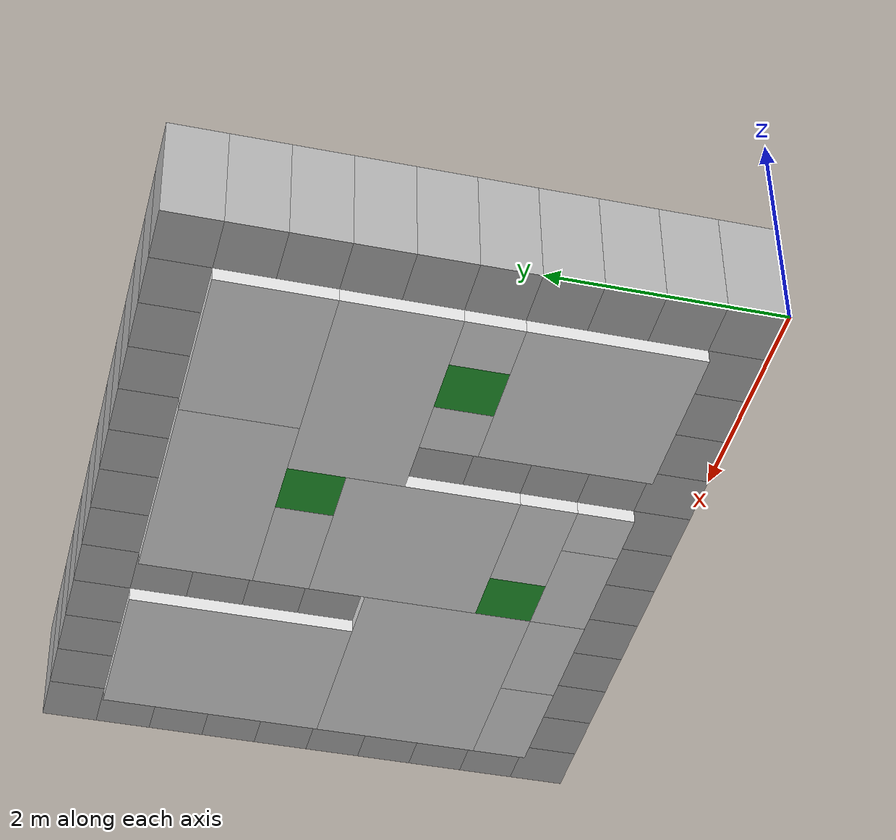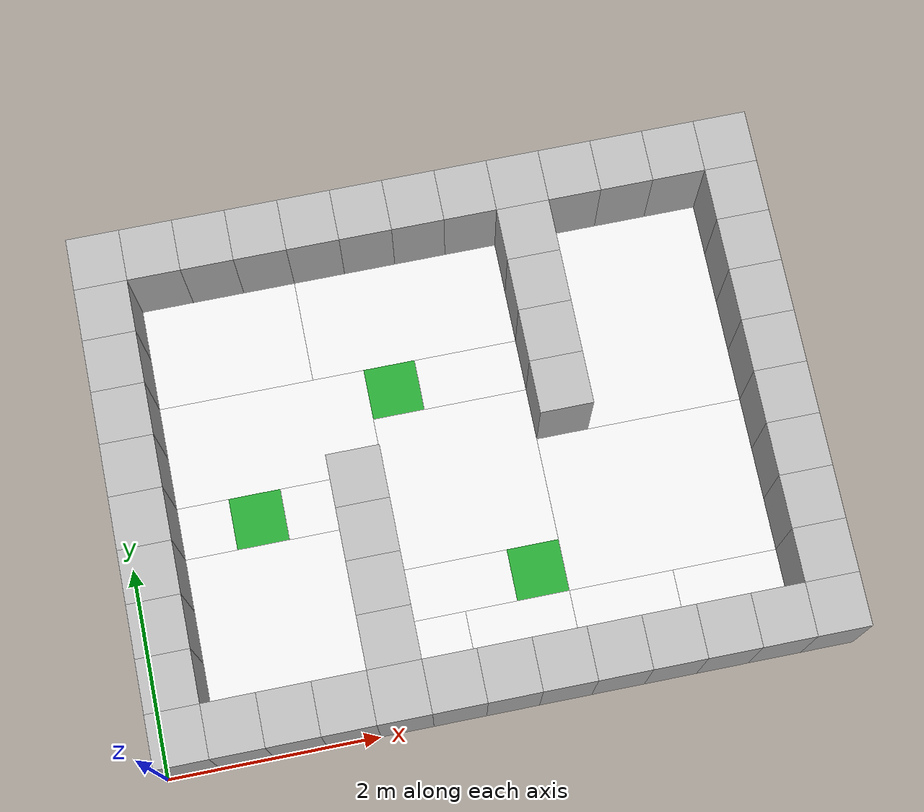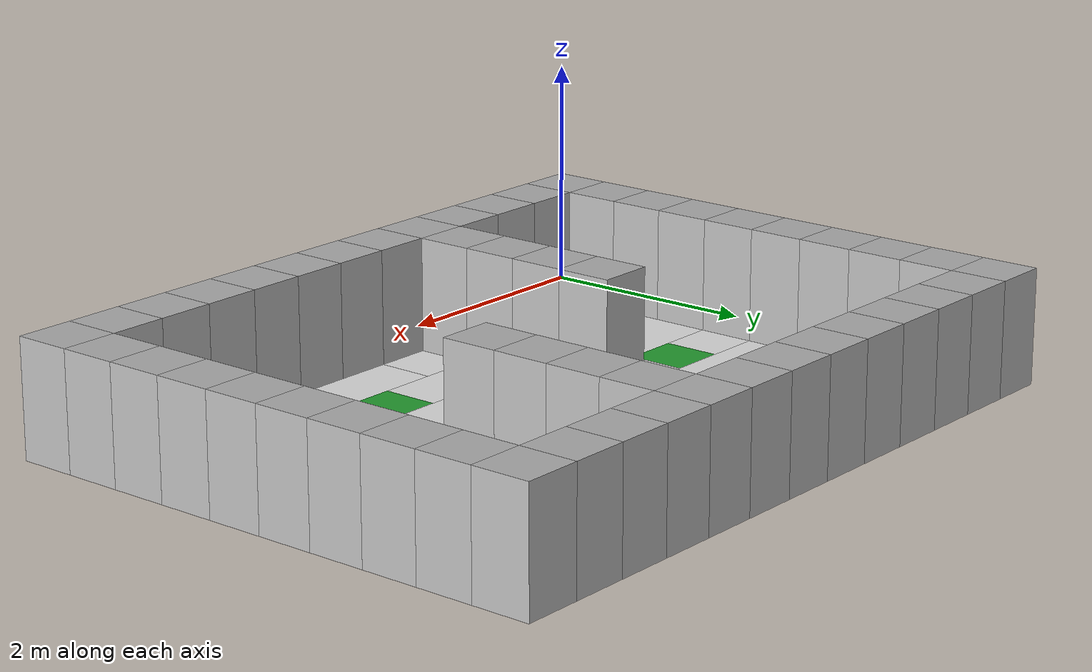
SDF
<sdf version="1.5">
  <model name="map">
    <static>1</static>
    <link name="map">
      <collision name="floor">
        <pose>3.25 2.5 -0.0625 0 0 0</pose>
        <geometry>
          <box>
            <size>6.5 5.0 0.125</size>
          </box>
        </geometry>
      </collision>
      <visual name="floor_0">
        <pose>1.25 1.25 -0.0625 0 0 0</pose>
        <geometry>
          <box>
            <size>1.5 1.5 0.125</size>
          </box>
        </geometry>
        <material>
          <script>
            <uri>file://media/materials/scripts/gazebo.material</uri>
            <name>Gazebo/White</name>
          </script>
        </material>
      </visual>
      <visual name="floor_1">
        <pose>1.25 4.0 -0.0625 0 0 0</pose>
        <geometry>
          <box>
            <size>1.5 1.0 0.125</size>
          </box>
        </geometry>
        <material>
          <script>
            <uri>file://media/materials/scripts/gazebo.material</uri>
            <name>Gazebo/White</name>
          </script>
        </material>
      </visual>
      <visual name="floor_2">
        <pose>3.0 4.0 -0.0625 0 0 0</pose>
        <geometry>
          <box>
            <size>2.0 1.0 0.125</size>
          </box>
        </geometry>
        <material>
          <script>
            <uri>file://media/materials/scripts/gazebo.material</uri>
            <name>Gazebo/White</name>
          </script>
        </material>
      </visual>
      <visual name="floor_3">
        <pose>5.0 1.75 -0.0625 0 0 0</pose>
        <geometry>
          <box>
            <size>2.0 1.5 0.125</size>
          </box>
        </geometry>
        <material>
          <script>
            <uri>file://media/materials/scripts/gazebo.material</uri>
            <name>Gazebo/White</name>
          </script>
        </material>
      </visual>
      <visual name="floor_4">
        <pose>5.25 3.5 -0.0625 0 0 0</pose>
        <geometry>
          <box>
            <size>1.5 2.0 0.125</size>
          </box>
        </geometry>
        <material>
          <script>
            <uri>file://media/materials/scripts/gazebo.material</uri>
            <name>Gazebo/White</name>
          </script>
        </material>
      </visual>
      <visual name="floor_5">
        <pose>2.75 0.75 -0.0625 0 0 0</pose>
        <geometry>
          <box>
            <size>0.5 0.5 0.125</size>
          </box>
        </geometry>
        <material>
          <script>
            <uri>file://media/materials/scripts/gazebo.material</uri>
            <name>Gazebo/White</name>
          </script>
        </material>
      </visual>
      <visual name="floor_6">
        <pose>3.5 0.75 -0.0625 0 0 0</pose>
        <geometry>
          <box>
            <size>1.0 0.5 0.125</size>
          </box>
        </geometry>
        <material>
          <script>
            <uri>file://media/materials/scripts/gazebo.material</uri>
            <name>Gazebo/White</name>
          </script>
        </material>
      </visual>
      <visual name="floor_7">
        <pose>4.5 0.75 -0.0625 0 0 0</pose>
        <geometry>
          <box>
            <size>1.0 0.5 0.125</size>
          </box>
        </geometry>
        <material>
          <script>
            <uri>file://media/materials/scripts/gazebo.material</uri>
            <name>Gazebo/White</name>
          </script>
        </material>
      </visual>
      <visual name="floor_8">
        <pose>5.5 0.75 -0.0625 0 0 0</pose>
        <geometry>
          <box>
            <size>1.0 0.5 0.125</size>
          </box>
        </geometry>
        <material>
          <script>
            <uri>file://media/materials/scripts/gazebo.material</uri>
            <name>Gazebo/White</name>
          </script>
        </material>
      </visual>
      <visual name="floor_9">
        <pose>1.5 3.0 -0.0625 0 0 0</pose>
        <geometry>
          <box>
            <size>2.0 1.0 0.125</size>
          </box>
        </geometry>
        <material>
          <script>
            <uri>file://media/materials/scripts/gazebo.material</uri>
            <name>Gazebo/White</name>
          </script>
        </material>
      </visual>
      <visual name="floor_10">
        <pose>1.75 2.25 -0.0625 0 0 0</pose>
        <geometry>
          <box>
            <size>0.5 0.5 0.125</size>
          </box>
        </geometry>
        <material>
          <script>
            <uri>file://media/materials/scripts/gazebo.material</uri>
            <name>Gazebo/White</name>
          </script>
        </material>
      </visual>
      <visual name="floor_11">
        <pose>3.0 1.25 -0.0625 0 0 0</pose>
        <geometry>
          <box>
            <size>1.0 0.5 0.125</size>
          </box>
        </geometry>
        <material>
          <script>
            <uri>file://media/materials/scripts/gazebo.material</uri>
            <name>Gazebo/White</name>
          </script>
        </material>
      </visual>
      <visual name="floor_12">
        <pose>3.25 2.25 -0.0625 0 0 0</pose>
        <geometry>
          <box>
            <size>1.5 1.5 0.125</size>
          </box>
        </geometry>
        <material>
          <script>
            <uri>file://media/materials/scripts/gazebo.material</uri>
            <name>Gazebo/White</name>
          </script>
        </material>
      </visual>
      <visual name="floor_13">
        <pose>0.75 2.25 -0.0625 0 0 0</pose>
        <geometry>
          <box>
            <size>0.5 0.5 0.125</size>
          </box>
        </geometry>
        <material>
          <script>
            <uri>file://media/materials/scripts/gazebo.material</uri>
            <name>Gazebo/White</name>
          </script>
        </material>
      </visual>
      <visual name="floor_14">
        <pose>3.5 3.25 -0.0625 0 0 0</pose>
        <geometry>
          <box>
            <size>1.0 0.5 0.125</size>
          </box>
        </geometry>
        <material>
          <script>
            <uri>file://media/materials/scripts/gazebo.material</uri>
            <name>Gazebo/White</name>
          </script>
        </material>
      </visual>
      <visual name="floor_target_0">
        <pose>3.75 1.25 -0.0625 0 0 0</pose>
        <geometry>
          <box>
            <size>0.5 0.5 0.125</size>
          </box>
        </geometry>
        <material>
          <script>
            <uri>file://media/materials/scripts/gazebo.material</uri>
            <name>Gazebo/Green</name>
          </script>
        </material>
      </visual>
      <visual name="floor_target_1">
        <pose>1.25 2.25 -0.0625 0 0 0</pose>
        <geometry>
          <box>
            <size>0.5 0.5 0.125</size>
          </box>
        </geometry>
        <material>
          <script>
            <uri>file://media/materials/scripts/gazebo.material</uri>
            <name>Gazebo/Green</name>
          </script>
        </material>
      </visual>
      <visual name="floor_target_2">
        <pose>2.75 3.25 -0.0625 0 0 0</pose>
        <geometry>
          <box>
            <size>0.5 0.5 0.125</size>
          </box>
        </geometry>
        <material>
          <script>
            <uri>file://media/materials/scripts/gazebo.material</uri>
            <name>Gazebo/Green</name>
          </script>
        </material>
      </visual>
      <collision name="box_0_0">
        <pose>0.25 0.25 0.5 0 0 0</pose>
        <geometry>
          <box>
            <size>0.5 0.5 1.0</size>
          </box>
        </geometry>
      </collision>
      <visual name="box_0_0">
        <pose>0.25 0.25 0.5 0 0 0</pose>
        <geometry>
          <box>
            <size>0.5 0.5 1.0</size>
          </box>
        </geometry>
      </visual>
      <collision name="box_0_1">
        <pose>0.25 0.75 0.5 0 0 0</pose>
        <geometry>
          <box>
            <size>0.5 0.5 1.0</size>
          </box>
        </geometry>
      </collision>
      <visual name="box_0_1">
        <pose>0.25 0.75 0.5 0 0 0</pose>
        <geometry>
          <box>
            <size>0.5 0.5 1.0</size>
          </box>
        </geometry>
      </visual>
      <collision name="box_0_2">
        <pose>0.25 1.25 0.5 0 0 0</pose>
        <geometry>
          <box>
            <size>0.5 0.5 1.0</size>
          </box>
        </geometry>
      </collision>
      <visual name="box_0_2">
        <pose>0.25 1.25 0.5 0 0 0</pose>
        <geometry>
          <box>
            <size>0.5 0.5 1.0</size>
          </box>
        </geometry>
      </visual>
      <collision name="box_0_3">
        <pose>0.25 1.75 0.5 0 0 0</pose>
        <geometry>
          <box>
            <size>0.5 0.5 1.0</size>
          </box>
        </geometry>
      </collision>
      <visual name="box_0_3">
        <pose>0.25 1.75 0.5 0 0 0</pose>
        <geometry>
          <box>
            <size>0.5 0.5 1.0</size>
          </box>
        </geometry>
      </visual>
      <collision name="box_0_4">
        <pose>0.25 2.25 0.5 0 0 0</pose>
        <geometry>
          <box>
            <size>0.5 0.5 1.0</size>
          </box>
        </geometry>
      </collision>
      <visual name="box_0_4">
        <pose>0.25 2.25 0.5 0 0 0</pose>
        <geometry>
          <box>
            <size>0.5 0.5 1.0</size>
          </box>
        </geometry>
      </visual>
      <collision name="box_0_5">
        <pose>0.25 2.75 0.5 0 0 0</pose>
        <geometry>
          <box>
            <size>0.5 0.5 1.0</size>
          </box>
        </geometry>
      </collision>
      <visual name="box_0_5">
        <pose>0.25 2.75 0.5 0 0 0</pose>
        <geometry>
          <box>
            <size>0.5 0.5 1.0</size>
          </box>
        </geometry>
      </visual>
      <collision name="box_0_6">
        <pose>0.25 3.25 0.5 0 0 0</pose>
        <geometry>
          <box>
            <size>0.5 0.5 1.0</size>
          </box>
        </geometry>
      </collision>
      <visual name="box_0_6">
        <pose>0.25 3.25 0.5 0 0 0</pose>
        <geometry>
          <box>
            <size>0.5 0.5 1.0</size>
          </box>
        </geometry>
      </visual>
      <collision name="box_0_7">
        <pose>0.25 3.75 0.5 0 0 0</pose>
        <geometry>
          <box>
            <size>0.5 0.5 1.0</size>
          </box>
        </geometry>
      </collision>
      <visual name="box_0_7">
        <pose>0.25 3.75 0.5 0 0 0</pose>
        <geometry>
          <box>
            <size>0.5 0.5 1.0</size>
          </box>
        </geometry>
      </visual>
      <collision name="box_0_8">
        <pose>0.25 4.25 0.5 0 0 0</pose>
        <geometry>
          <box>
            <size>0.5 0.5 1.0</size>
          </box>
        </geometry>
      </collision>
      <visual name="box_0_8">
        <pose>0.25 4.25 0.5 0 0 0</pose>
        <geometry>
          <box>
            <size>0.5 0.5 1.0</size>
          </box>
        </geometry>
      </visual>
      <collision name="box_0_9">
        <pose>0.25 4.75 0.5 0 0 0</pose>
        <geometry>
          <box>
            <size>0.5 0.5 1.0</size>
          </box>
        </geometry>
      </collision>
      <visual name="box_0_9">
        <pose>0.25 4.75 0.5 0 0 0</pose>
        <geometry>
          <box>
            <size>0.5 0.5 1.0</size>
          </box>
        </geometry>
      </visual>
      <collision name="box_1_0">
        <pose>0.75 0.25 0.5 0 0 0</pose>
        <geometry>
          <box>
            <size>0.5 0.5 1.0</size>
          </box>
        </geometry>
      </collision>
      <visual name="box_1_0">
        <pose>0.75 0.25 0.5 0 0 0</pose>
        <geometry>
          <box>
            <size>0.5 0.5 1.0</size>
          </box>
        </geometry>
      </visual>
      <collision name="box_1_9">
        <pose>0.75 4.75 0.5 0 0 0</pose>
        <geometry>
          <box>
            <size>0.5 0.5 1.0</size>
          </box>
        </geometry>
      </collision>
      <visual name="box_1_9">
        <pose>0.75 4.75 0.5 0 0 0</pose>
        <geometry>
          <box>
            <size>0.5 0.5 1.0</size>
          </box>
        </geometry>
      </visual>
      <collision name="box_2_0">
        <pose>1.25 0.25 0.5 0 0 0</pose>
        <geometry>
          <box>
            <size>0.5 0.5 1.0</size>
          </box>
        </geometry>
      </collision>
      <visual name="box_2_0">
        <pose>1.25 0.25 0.5 0 0 0</pose>
        <geometry>
          <box>
            <size>0.5 0.5 1.0</size>
          </box>
        </geometry>
      </visual>
      <collision name="box_2_9">
        <pose>1.25 4.75 0.5 0 0 0</pose>
        <geometry>
          <box>
            <size>0.5 0.5 1.0</size>
          </box>
        </geometry>
      </collision>
      <visual name="box_2_9">
        <pose>1.25 4.75 0.5 0 0 0</pose>
        <geometry>
          <box>
            <size>0.5 0.5 1.0</size>
          </box>
        </geometry>
      </visual>
      <collision name="box_3_0">
        <pose>1.75 0.25 0.5 0 0 0</pose>
        <geometry>
          <box>
            <size>0.5 0.5 1.0</size>
          </box>
        </geometry>
      </collision>
      <visual name="box_3_0">
        <pose>1.75 0.25 0.5 0 0 0</pose>
        <geometry>
          <box>
            <size>0.5 0.5 1.0</size>
          </box>
        </geometry>
      </visual>
      <collision name="box_3_9">
        <pose>1.75 4.75 0.5 0 0 0</pose>
        <geometry>
          <box>
            <size>0.5 0.5 1.0</size>
          </box>
        </geometry>
      </collision>
      <visual name="box_3_9">
        <pose>1.75 4.75 0.5 0 0 0</pose>
        <geometry>
          <box>
            <size>0.5 0.5 1.0</size>
          </box>
        </geometry>
      </visual>
      <collision name="box_4_0">
        <pose>2.25 0.25 0.5 0 0 0</pose>
        <geometry>
          <box>
            <size>0.5 0.5 1.0</size>
          </box>
        </geometry>
      </collision>
      <visual name="box_4_0">
        <pose>2.25 0.25 0.5 0 0 0</pose>
        <geometry>
          <box>
            <size>0.5 0.5 1.0</size>
          </box>
        </geometry>
      </visual>
      <collision name="box_4_1">
        <pose>2.25 0.75 0.5 0 0 0</pose>
        <geometry>
          <box>
            <size>0.5 0.5 1.0</size>
          </box>
        </geometry>
      </collision>
      <visual name="box_4_1">
        <pose>2.25 0.75 0.5 0 0 0</pose>
        <geometry>
          <box>
            <size>0.5 0.5 1.0</size>
          </box>
        </geometry>
      </visual>
      <collision name="box_4_2">
        <pose>2.25 1.25 0.5 0 0 0</pose>
        <geometry>
          <box>
            <size>0.5 0.5 1.0</size>
          </box>
        </geometry>
      </collision>
      <visual name="box_4_2">
        <pose>2.25 1.25 0.5 0 0 0</pose>
        <geometry>
          <box>
            <size>0.5 0.5 1.0</size>
          </box>
        </geometry>
      </visual>
      <collision name="box_4_3">
        <pose>2.25 1.75 0.5 0 0 0</pose>
        <geometry>
          <box>
            <size>0.5 0.5 1.0</size>
          </box>
        </geometry>
      </collision>
      <visual name="box_4_3">
        <pose>2.25 1.75 0.5 0 0 0</pose>
        <geometry>
          <box>
            <size>0.5 0.5 1.0</size>
          </box>
        </geometry>
      </visual>
      <collision name="box_4_4">
        <pose>2.25 2.25 0.5 0 0 0</pose>
        <geometry>
          <box>
            <size>0.5 0.5 1.0</size>
          </box>
        </geometry>
      </collision>
      <visual name="box_4_4">
        <pose>2.25 2.25 0.5 0 0 0</pose>
        <geometry>
          <box>
            <size>0.5 0.5 1.0</size>
          </box>
        </geometry>
      </visual>
      <collision name="box_4_9">
        <pose>2.25 4.75 0.5 0 0 0</pose>
        <geometry>
          <box>
            <size>0.5 0.5 1.0</size>
          </box>
        </geometry>
      </collision>
      <visual name="box_4_9">
        <pose>2.25 4.75 0.5 0 0 0</pose>
        <geometry>
          <box>
            <size>0.5 0.5 1.0</size>
          </box>
        </geometry>
      </visual>
      <collision name="box_5_0">
        <pose>2.75 0.25 0.5 0 0 0</pose>
        <geometry>
          <box>
            <size>0.5 0.5 1.0</size>
          </box>
        </geometry>
      </collision>
      <visual name="box_5_0">
        <pose>2.75 0.25 0.5 0 0 0</pose>
        <geometry>
          <box>
            <size>0.5 0.5 1.0</size>
          </box>
        </geometry>
      </visual>
      <collision name="box_5_9">
        <pose>2.75 4.75 0.5 0 0 0</pose>
        <geometry>
          <box>
            <size>0.5 0.5 1.0</size>
          </box>
        </geometry>
      </collision>
      <visual name="box_5_9">
        <pose>2.75 4.75 0.5 0 0 0</pose>
        <geometry>
          <box>
            <size>0.5 0.5 1.0</size>
          </box>
        </geometry>
      </visual>
      <collision name="box_6_0">
        <pose>3.25 0.25 0.5 0 0 0</pose>
        <geometry>
          <box>
            <size>0.5 0.5 1.0</size>
          </box>
        </geometry>
      </collision>
      <visual name="box_6_0">
        <pose>3.25 0.25 0.5 0 0 0</pose>
        <geometry>
          <box>
            <size>0.5 0.5 1.0</size>
          </box>
        </geometry>
      </visual>
      <collision name="box_6_9">
        <pose>3.25 4.75 0.5 0 0 0</pose>
        <geometry>
          <box>
            <size>0.5 0.5 1.0</size>
          </box>
        </geometry>
      </collision>
      <visual name="box_6_9">
        <pose>3.25 4.75 0.5 0 0 0</pose>
        <geometry>
          <box>
            <size>0.5 0.5 1.0</size>
          </box>
        </geometry>
      </visual>
      <collision name="box_7_0">
        <pose>3.75 0.25 0.5 0 0 0</pose>
        <geometry>
          <box>
            <size>0.5 0.5 1.0</size>
          </box>
        </geometry>
      </collision>
      <visual name="box_7_0">
        <pose>3.75 0.25 0.5 0 0 0</pose>
        <geometry>
          <box>
            <size>0.5 0.5 1.0</size>
          </box>
        </geometry>
      </visual>
      <collision name="box_7_9">
        <pose>3.75 4.75 0.5 0 0 0</pose>
        <geometry>
          <box>
            <size>0.5 0.5 1.0</size>
          </box>
        </geometry>
      </collision>
      <visual name="box_7_9">
        <pose>3.75 4.75 0.5 0 0 0</pose>
        <geometry>
          <box>
            <size>0.5 0.5 1.0</size>
          </box>
        </geometry>
      </visual>
      <collision name="box_8_0">
        <pose>4.25 0.25 0.5 0 0 0</pose>
        <geometry>
          <box>
            <size>0.5 0.5 1.0</size>
          </box>
        </geometry>
      </collision>
      <visual name="box_8_0">
        <pose>4.25 0.25 0.5 0 0 0</pose>
        <geometry>
          <box>
            <size>0.5 0.5 1.0</size>
          </box>
        </geometry>
      </visual>
      <collision name="box_8_5">
        <pose>4.25 2.75 0.5 0 0 0</pose>
        <geometry>
          <box>
            <size>0.5 0.5 1.0</size>
          </box>
        </geometry>
      </collision>
      <visual name="box_8_5">
        <pose>4.25 2.75 0.5 0 0 0</pose>
        <geometry>
          <box>
            <size>0.5 0.5 1.0</size>
          </box>
        </geometry>
      </visual>
      <collision name="box_8_6">
        <pose>4.25 3.25 0.5 0 0 0</pose>
        <geometry>
          <box>
            <size>0.5 0.5 1.0</size>
          </box>
        </geometry>
      </collision>
      <visual name="box_8_6">
        <pose>4.25 3.25 0.5 0 0 0</pose>
        <geometry>
          <box>
            <size>0.5 0.5 1.0</size>
          </box>
        </geometry>
      </visual>
      <collision name="box_8_7">
        <pose>4.25 3.75 0.5 0 0 0</pose>
        <geometry>
          <box>
            <size>0.5 0.5 1.0</size>
          </box>
        </geometry>
      </collision>
      <visual name="box_8_7">
        <pose>4.25 3.75 0.5 0 0 0</pose>
        <geometry>
          <box>
            <size>0.5 0.5 1.0</size>
          </box>
        </geometry>
      </visual>
      <collision name="box_8_8">
        <pose>4.25 4.25 0.5 0 0 0</pose>
        <geometry>
          <box>
            <size>0.5 0.5 1.0</size>
          </box>
        </geometry>
      </collision>
      <visual name="box_8_8">
        <pose>4.25 4.25 0.5 0 0 0</pose>
        <geometry>
          <box>
            <size>0.5 0.5 1.0</size>
          </box>
        </geometry>
      </visual>
      <collision name="box_8_9">
        <pose>4.25 4.75 0.5 0 0 0</pose>
        <geometry>
          <box>
            <size>0.5 0.5 1.0</size>
          </box>
        </geometry>
      </collision>
      <visual name="box_8_9">
        <pose>4.25 4.75 0.5 0 0 0</pose>
        <geometry>
          <box>
            <size>0.5 0.5 1.0</size>
          </box>
        </geometry>
      </visual>
      <collision name="box_9_0">
        <pose>4.75 0.25 0.5 0 0 0</pose>
        <geometry>
          <box>
            <size>0.5 0.5 1.0</size>
          </box>
        </geometry>
      </collision>
      <visual name="box_9_0">
        <pose>4.75 0.25 0.5 0 0 0</pose>
        <geometry>
          <box>
            <size>0.5 0.5 1.0</size>
          </box>
        </geometry>
      </visual>
      <collision name="box_9_9">
        <pose>4.75 4.75 0.5 0 0 0</pose>
        <geometry>
          <box>
            <size>0.5 0.5 1.0</size>
          </box>
        </geometry>
      </collision>
      <visual name="box_9_9">
        <pose>4.75 4.75 0.5 0 0 0</pose>
        <geometry>
          <box>
            <size>0.5 0.5 1.0</size>
          </box>
        </geometry>
      </visual>
      <collision name="box_10_0">
        <pose>5.25 0.25 0.5 0 0 0</pose>
        <geometry>
          <box>
            <size>0.5 0.5 1.0</size>
          </box>
        </geometry>
      </collision>
      <visual name="box_10_0">
        <pose>5.25 0.25 0.5 0 0 0</pose>
        <geometry>
          <box>
            <size>0.5 0.5 1.0</size>
          </box>
        </geometry>
      </visual>
      <collision name="box_10_9">
        <pose>5.25 4.75 0.5 0 0 0</pose>
        <geometry>
          <box>
            <size>0.5 0.5 1.0</size>
          </box>
        </geometry>
      </collision>
      <visual name="box_10_9">
        <pose>5.25 4.75 0.5 0 0 0</pose>
        <geometry>
          <box>
            <size>0.5 0.5 1.0</size>
          </box>
        </geometry>
      </visual>
      <collision name="box_11_0">
        <pose>5.75 0.25 0.5 0 0 0</pose>
        <geometry>
          <box>
            <size>0.5 0.5 1.0</size>
          </box>
        </geometry>
      </collision>
      <visual name="box_11_0">
        <pose>5.75 0.25 0.5 0 0 0</pose>
        <geometry>
          <box>
            <size>0.5 0.5 1.0</size>
          </box>
        </geometry>
      </visual>
      <collision name="box_11_9">
        <pose>5.75 4.75 0.5 0 0 0</pose>
        <geometry>
          <box>
            <size>0.5 0.5 1.0</size>
          </box>
        </geometry>
      </collision>
      <visual name="box_11_9">
        <pose>5.75 4.75 0.5 0 0 0</pose>
        <geometry>
          <box>
            <size>0.5 0.5 1.0</size>
          </box>
        </geometry>
      </visual>
      <collision name="box_12_0">
        <pose>6.25 0.25 0.5 0 0 0</pose>
        <geometry>
          <box>
            <size>0.5 0.5 1.0</size>
          </box>
        </geometry>
      </collision>
      <visual name="box_12_0">
        <pose>6.25 0.25 0.5 0 0 0</pose>
        <geometry>
          <box>
            <size>0.5 0.5 1.0</size>
          </box>
        </geometry>
      </visual>
      <collision name="box_12_1">
        <pose>6.25 0.75 0.5 0 0 0</pose>
        <geometry>
          <box>
            <size>0.5 0.5 1.0</size>
          </box>
        </geometry>
      </collision>
      <visual name="box_12_1">
        <pose>6.25 0.75 0.5 0 0 0</pose>
        <geometry>
          <box>
            <size>0.5 0.5 1.0</size>
          </box>
        </geometry>
      </visual>
      <collision name="box_12_2">
        <pose>6.25 1.25 0.5 0 0 0</pose>
        <geometry>
          <box>
            <size>0.5 0.5 1.0</size>
          </box>
        </geometry>
      </collision>
      <visual name="box_12_2">
        <pose>6.25 1.25 0.5 0 0 0</pose>
        <geometry>
          <box>
            <size>0.5 0.5 1.0</size>
          </box>
        </geometry>
      </visual>
      <collision name="box_12_3">
        <pose>6.25 1.75 0.5 0 0 0</pose>
        <geometry>
          <box>
            <size>0.5 0.5 1.0</size>
          </box>
        </geometry>
      </collision>
      <visual name="box_12_3">
        <pose>6.25 1.75 0.5 0 0 0</pose>
        <geometry>
          <box>
            <size>0.5 0.5 1.0</size>
          </box>
        </geometry>
      </visual>
      <collision name="box_12_4">
        <pose>6.25 2.25 0.5 0 0 0</pose>
        <geometry>
          <box>
            <size>0.5 0.5 1.0</size>
          </box>
        </geometry>
      </collision>
      <visual name="box_12_4">
        <pose>6.25 2.25 0.5 0 0 0</pose>
        <geometry>
          <box>
            <size>0.5 0.5 1.0</size>
          </box>
        </geometry>
      </visual>
      <collision name="box_12_5">
        <pose>6.25 2.75 0.5 0 0 0</pose>
        <geometry>
          <box>
            <size>0.5 0.5 1.0</size>
          </box>
        </geometry>
      </collision>
      <visual name="box_12_5">
        <pose>6.25 2.75 0.5 0 0 0</pose>
        <geometry>
          <box>
            <size>0.5 0.5 1.0</size>
          </box>
        </geometry>
      </visual>
      <collision name="box_12_6">
        <pose>6.25 3.25 0.5 0 0 0</pose>
        <geometry>
          <box>
            <size>0.5 0.5 1.0</size>
          </box>
        </geometry>
      </collision>
      <visual name="box_12_6">
        <pose>6.25 3.25 0.5 0 0 0</pose>
        <geometry>
          <box>
            <size>0.5 0.5 1.0</size>
          </box>
        </geometry>
      </visual>
      <collision name="box_12_7">
        <pose>6.25 3.75 0.5 0 0 0</pose>
        <geometry>
          <box>
            <size>0.5 0.5 1.0</size>
          </box>
        </geometry>
      </collision>
      <visual name="box_12_7">
        <pose>6.25 3.75 0.5 0 0 0</pose>
        <geometry>
          <box>
            <size>0.5 0.5 1.0</size>
          </box>
        </geometry>
      </visual>
      <collision name="box_12_8">
        <pose>6.25 4.25 0.5 0 0 0</pose>
        <geometry>
          <box>
            <size>0.5 0.5 1.0</size>
          </box>
        </geometry>
      </collision>
      <visual name="box_12_8">
        <pose>6.25 4.25 0.5 0 0 0</pose>
        <geometry>
          <box>
            <size>0.5 0.5 1.0</size>
          </box>
        </geometry>
      </visual>
      <collision name="box_12_9">
        <pose>6.25 4.75 0.5 0 0 0</pose>
        <geometry>
          <box>
            <size>0.5 0.5 1.0</size>
          </box>
        </geometry>
      </collision>
      <visual name="box_12_9">
        <pose>6.25 4.75 0.5 0 0 0</pose>
        <geometry>
          <box>
            <size>0.5 0.5 1.0</size>
          </box>
        </geometry>
      </visual>
    </link>
  </model>
</sdf>
